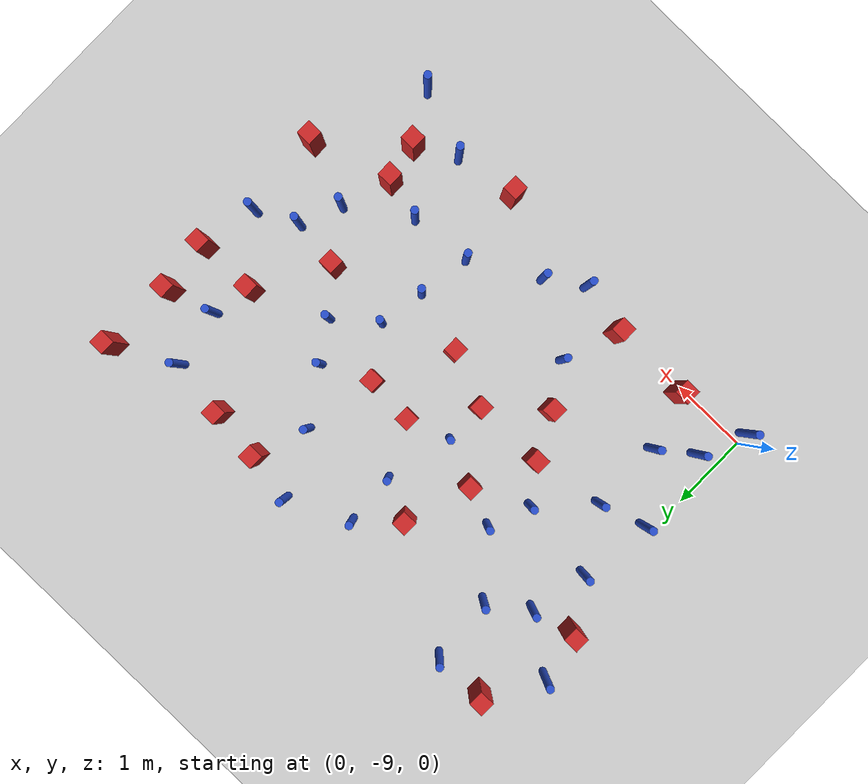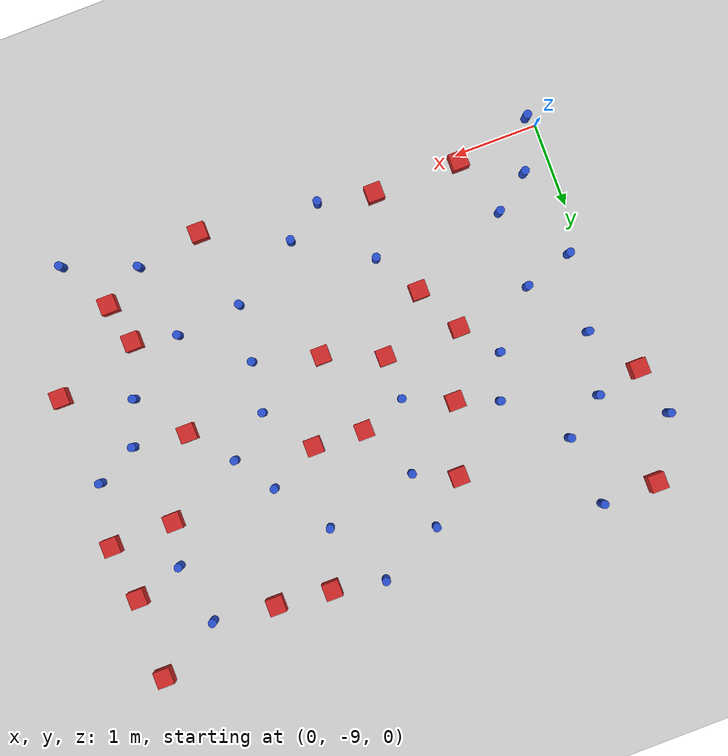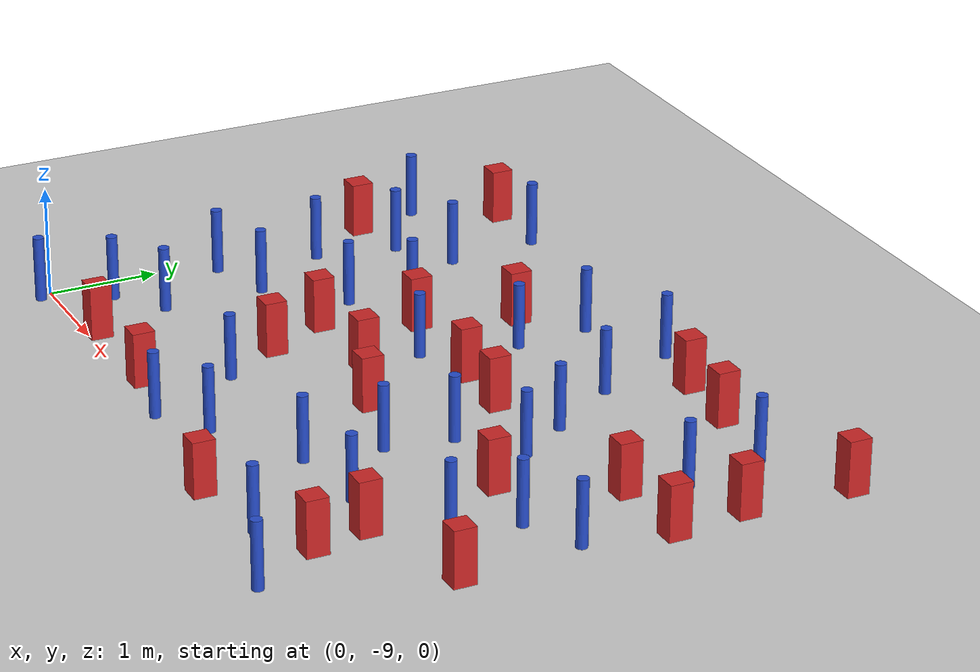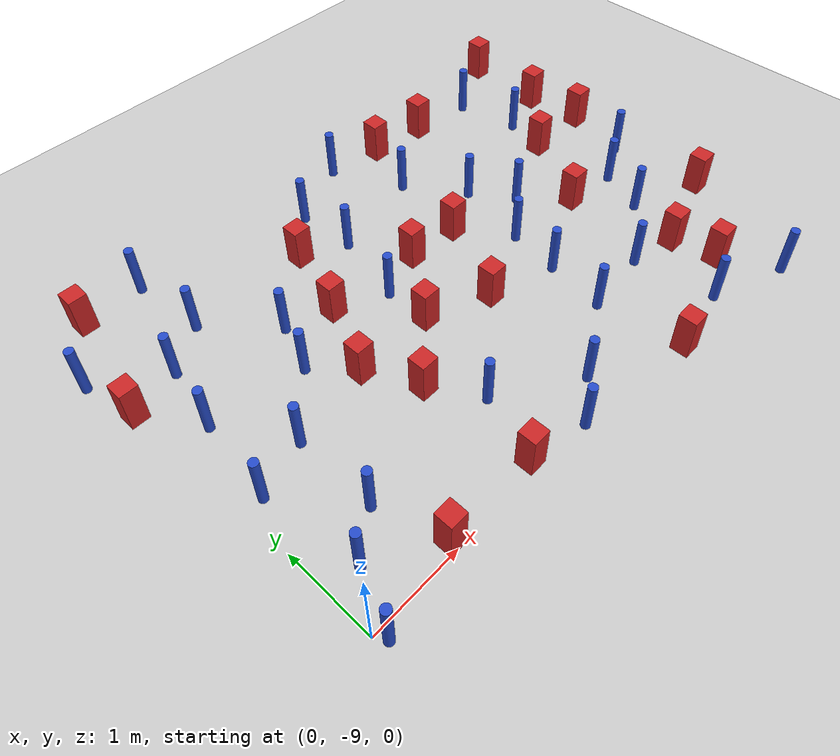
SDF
<sdf version="1.6">
 <world name="default">
  <model name="ground_plane">
   <static>1</static>
   <link name="link">
    <collision name="collision">
     <geometry><plane><normal>0 0 1</normal><size>100 100</size></plane></geometry>
     <surface><friction><ode><mu>100</mu><mu2>50</mu2></ode></friction></surface>
    </collision>
    <visual name="visual">
     <cast_shadows>0</cast_shadows>
     <geometry><plane><normal>0 0 1</normal><size>100 100</size></plane></geometry>
     <material>
      <ambient>1.0 1.0 1.0 1.0</ambient>
      <diffuse>0.8 0.8 0.8 1.0</diffuse>
      <specular>0.01 0.01 0.01 1.000000</specular>
     </material>
    </visual>
   </link>
  </model>
  <model name="pole_obstacle0">
   <static>true</static>
   <pose>4.34795692381 -6.1171369326 2.88873142074e-08 -9.90536690842e-09 4.60219948965e-07 -1.20965994976e-07</pose>
   <link name="link">
    <pose>0 0 0.3 0 -0 0</pose>
    <inertial>
     <mass>1</mass>
     <inertia><ixx>0.145833</ixx><ixy>0</ixy><ixz>0</ixz><iyy>0.145833</iyy><iyz>0</iyz><izz>0.125</izz></inertia>
    </inertial>
    <collision name="collision">
     <geometry><cylinder><radius>0.05</radius><length>.6</length></cylinder></geometry>
    </collision>
    <visual name="visual">
     <geometry><cylinder><radius>0.05</radius><length>.6</length></cylinder></geometry>
     <material>
      <script><name>Gazebo/Blue</name><uri>file://media/materials/scripts/gazebo.material</uri></script>
     </material>
    </visual>
   </link>
  </model>
  <model name="pole_obstacle2">
   <static>true</static>
   <pose>0.933791437993 -5.44674622654 2.88873142074e-08 -9.90536689661e-09 4.60219948993e-07 -1.20965994957e-07</pose>
   <link name="link">
    <pose>0 0 0.3 0 -0 0</pose>
    <inertial>
     <mass>1</mass>
     <inertia><ixx>0.145833</ixx><ixy>0</ixy><ixz>0</ixz><iyy>0.145833</iyy><iyz>0</iyz><izz>0.125</izz></inertia>
    </inertial>
    <collision name="collision">
     <geometry><cylinder><radius>0.05</radius><length>.6</length></cylinder></geometry>
    </collision>
    <visual name="visual">
     <geometry><cylinder><radius>0.05</radius><length>.6</length></cylinder></geometry>
     <material>
      <script><name>Gazebo/Blue</name><uri>file://media/materials/scripts/gazebo.material</uri></script>
     </material>
    </visual>
   </link>
  </model>
  <model name="square_post_obstacle9">
   <static>true</static>
   <pose>0.173088994099 -4.60743479318 8.22691968438e-08 7.2212513382e-06 -7.54495500217e-07 2.29674213826e-05</pose>
   <link name="link">
    <pose>0 0 0.25 0 -0 0</pose>
    <inertial>
     <mass>100</mass>
     <inertia>
      <ixx>0.166667</ixx>
      <ixy>0</ixy>
      <ixz>0</ixz>
      <iyy>0.166667</iyy>
      <iyz>0</iyz>
      <izz>0.166667</izz>
     </inertia>
    </inertial>
    <collision name="collision"><geometry><box><size>.2 .2 .5</size></box></geometry></collision>
    <visual name="visual">
     <geometry><box><size>.2 .2 .5</size></box></geometry>
     <material>
      <script><name>Gazebo/Red</name><uri>file://media/materials/scripts/gazebo.material</uri></script>
     </material>
    </visual>
   </link>
  </model>
  <model name="square_post_obstacle10">
   <static>true</static>
   <pose>5.58549876604 -6.17589599914 8.22691968438e-08 7.2212513382e-06 -7.54495500217e-07 2.29674213826e-05</pose>
   <link name="link">
    <pose>0 0 0.25 0 -0 0</pose>
    <inertial>
     <mass>100</mass>
     <inertia>
      <ixx>0.166667</ixx>
      <ixy>0</ixy>
      <ixz>0</ixz>
      <iyy>0.166667</iyy>
      <iyz>0</iyz>
      <izz>0.166667</izz>
     </inertia>
    </inertial>
    <collision name="collision"><geometry><box><size>.2 .2 .5</size></box></geometry></collision>
    <visual name="visual">
     <geometry><box><size>.2 .2 .5</size></box></geometry>
     <material>
      <script><name>Gazebo/Red</name><uri>file://media/materials/scripts/gazebo.material</uri></script>
     </material>
    </visual>
   </link>
  </model>
  <model name="square_post_obstacle11">
   <static>true</static>
   <pose>0.999707619295 -8.90997136029 8.22691968438e-08 7.2212513382e-06 -7.54495500217e-07 2.29674213826e-05</pose>
   <link name="link">
    <pose>0 0 0.25 0 -0 0</pose>
    <inertial>
     <mass>100</mass>
     <inertia>
      <ixx>0.166667</ixx>
      <ixy>0</ixy>
      <ixz>0</ixz>
      <iyy>0.166667</iyy>
      <iyz>0</iyz>
      <izz>0.166667</izz>
     </inertia>
    </inertial>
    <collision name="collision"><geometry><box><size>.2 .2 .5</size></box></geometry></collision>
    <visual name="visual">
     <geometry><box><size>.2 .2 .5</size></box></geometry>
     <material>
      <script><name>Gazebo/Red</name><uri>file://media/materials/scripts/gazebo.material</uri></script>
     </material>
    </visual>
   </link>
  </model>
  <model name="square_post_obstacle25">
   <static>true</static>
   <pose>2.04702596472 -8.91406215674 8.22691968438e-08 7.22125133819e-06 -7.54495500217e-07 2.29674213826e-05</pose>
   <link name="link">
    <pose>0 0 0.25 0 -0 0</pose>
    <inertial>
     <mass>100</mass>
     <inertia>
      <ixx>0.166667</ixx>
      <ixy>0</ixy>
      <ixz>0</ixz>
      <iyy>0.166667</iyy>
      <iyz>0</iyz>
      <izz>0.166667</izz>
     </inertia>
    </inertial>
    <collision name="collision"><geometry><box><size>.2 .2 .5</size></box></geometry></collision>
    <visual name="visual">
     <geometry><box><size>.2 .2 .5</size></box></geometry>
     <material>
      <script><name>Gazebo/Red</name><uri>file://media/materials/scripts/gazebo.material</uri></script>
     </material>
    </visual>
   </link>
  </model>
  <model name="pole_obstacle24">
   <static>true</static>
   <pose>4.90524724189 -9.08340190689 2.88873142074e-08 -9.9053668967e-09 4.60219948993e-07 -1.20965994957e-07</pose>
   <link name="link">
    <pose>0 0 0.3 0 -0 0</pose>
    <inertial>
     <mass>1</mass>
     <inertia><ixx>0.145833</ixx><ixy>0</ixy><ixz>0</ixz><iyy>0.145833</iyy><iyz>0</iyz><izz>0.125</izz></inertia>
    </inertial>
    <collision name="collision">
     <geometry><cylinder><radius>0.05</radius><length>.6</length></cylinder></geometry>
    </collision>
    <visual name="visual">
     <geometry><cylinder><radius>0.05</radius><length>.6</length></cylinder></geometry>
     <material>
      <script><name>Gazebo/Blue</name><uri>file://media/materials/scripts/gazebo.material</uri></script>
     </material>
    </visual>
   </link>
  </model>
  <model name="pole_obstacle34">
   <static>true</static>
   <pose>0.76741504973 -7.26752866724 2.88873142074e-08 -9.90536689661e-09 4.60219948993e-07 -1.20965994957e-07</pose>
   <link name="link">
    <pose>0 0 0.3 0 -0 0</pose>
    <inertial>
     <mass>1</mass>
     <inertia><ixx>0.145833</ixx><ixy>0</ixy><ixz>0</ixz><iyy>0.145833</iyy><iyz>0</iyz><izz>0.125</izz></inertia>
    </inertial>
    <collision name="collision">
     <geometry><cylinder><radius>0.05</radius><length>.6</length></cylinder></geometry>
    </collision>
    <visual name="visual">
     <geometry><cylinder><radius>0.05</radius><length>.6</length></cylinder></geometry>
     <material>
      <script><name>Gazebo/Blue</name><uri>file://media/materials/scripts/gazebo.material</uri></script>
     </material>
    </visual>
   </link>
  </model>
  <model name="pole_obstacle40">
   <static>true</static>
   <pose>2.74998378904 -5.03391932388 2.88873142074e-08 -9.90536689859e-09 4.60219948989e-07 -1.20965994961e-07</pose>
   <link name="link">
    <pose>0 0 0.3 0 -0 0</pose>
    <inertial>
     <mass>1</mass>
     <inertia><ixx>0.145833</ixx><ixy>0</ixy><ixz>0</ixz><iyy>0.145833</iyy><iyz>0</iyz><izz>0.125</izz></inertia>
    </inertial>
    <collision name="collision">
     <geometry><cylinder><radius>0.05</radius><length>.6</length></cylinder></geometry>
    </collision>
    <visual name="visual">
     <geometry><cylinder><radius>0.05</radius><length>.6</length></cylinder></geometry>
     <material>
      <script><name>Gazebo/Blue</name><uri>file://media/materials/scripts/gazebo.material</uri></script>
     </material>
    </visual>
   </link>
  </model>
  <model name="square_post_obstacle42">
   <static>true</static>
   <pose>6.30065635192 -7.9829899315 8.22691968438e-08 7.2212513382e-06 -7.54495500217e-07 2.29674213826e-05</pose>
   <link name="link">
    <pose>0 0 0.25 0 -0 0</pose>
    <inertial>
     <mass>100</mass>
     <inertia>
      <ixx>0.166667</ixx>
      <ixy>0</ixy>
      <ixz>0</ixz>
      <iyy>0.166667</iyy>
      <iyz>0</iyz>
      <izz>0.166667</izz>
     </inertia>
    </inertial>
    <collision name="collision"><geometry><box><size>.2 .2 .5</size></box></geometry></collision>
    <visual name="visual">
     <geometry><box><size>.2 .2 .5</size></box></geometry>
     <material>
      <script><name>Gazebo/Red</name><uri>file://media/materials/scripts/gazebo.material</uri></script>
     </material>
    </visual>
   </link>
  </model>
  <model name="pole_obstacle50">
   <static>true</static>
   <pose>0.183179159896 -7.45329864848 2.88873142074e-08 -9.90536689711e-09 4.60219948992e-07 -1.2096599496e-07</pose>
   <link name="link">
    <pose>0 0 0.3 0 -0 0</pose>
    <inertial>
     <mass>1</mass>
     <inertia><ixx>0.145833</ixx><ixy>0</ixy><ixz>0</ixz><iyy>0.145833</iyy><iyz>0</iyz><izz>0.125</izz></inertia>
    </inertial>
    <collision name="collision">
     <geometry><cylinder><radius>0.05</radius><length>.6</length></cylinder></geometry>
    </collision>
    <visual name="visual">
     <geometry><cylinder><radius>0.05</radius><length>.6</length></cylinder></geometry>
     <material>
      <script><name>Gazebo/Blue</name><uri>file://media/materials/scripts/gazebo.material</uri></script>
     </material>
    </visual>
   </link>
  </model>
  <model name="square_post_obstacle52">
   <static>true</static>
   <pose>3.29289854739 -7.36925721144 8.22691968438e-08 7.2212513382e-06 -7.54495500217e-07 2.29674213826e-05</pose>
   <link name="link">
    <pose>0 0 0.25 0 -0 0</pose>
    <inertial>
     <mass>100</mass>
     <inertia>
      <ixx>0.166667</ixx>
      <ixy>0</ixy>
      <ixz>0</ixz>
      <iyy>0.166667</iyy>
      <iyz>0</iyz>
      <izz>0.166667</izz>
     </inertia>
    </inertial>
    <collision name="collision"><geometry><box><size>.2 .2 .5</size></box></geometry></collision>
    <visual name="visual">
     <geometry><box><size>.2 .2 .5</size></box></geometry>
     <material>
      <script><name>Gazebo/Red</name><uri>file://media/materials/scripts/gazebo.material</uri></script>
     </material>
    </visual>
   </link>
  </model>
  <model name="square_post_obstacle60">
   <static>true</static>
   <pose>4.11973638282 -9.21090530438 8.22691968438e-08 7.22125133819e-06 -7.54495500217e-07 2.29674213826e-05</pose>
   <link name="link">
    <pose>0 0 0.25 0 -0 0</pose>
    <inertial>
     <mass>100</mass>
     <inertia>
      <ixx>0.166667</ixx>
      <ixy>0</ixy>
      <ixz>0</ixz>
      <iyy>0.166667</iyy>
      <iyz>0</iyz>
      <izz>0.166667</izz>
     </inertia>
    </inertial>
    <collision name="collision"><geometry><box><size>.2 .2 .5</size></box></geometry></collision>
    <visual name="visual">
     <geometry><box><size>.2 .2 .5</size></box></geometry>
     <material>
      <script><name>Gazebo/Red</name><uri>file://media/materials/scripts/gazebo.material</uri></script>
     </material>
    </visual>
   </link>
  </model>
  <model name="pole_obstacle60">
   <static>true</static>
   <pose>5.712511074 -7.15161358861 2.88873142074e-08 -9.90536690842e-09 4.60219948965e-07 -1.20965994976e-07</pose>
   <link name="link">
    <pose>0 0 0.3 0 -0 0</pose>
    <inertial>
     <mass>1</mass>
     <inertia><ixx>0.145833</ixx><ixy>0</ixy><ixz>0</ixz><iyy>0.145833</iyy><iyz>0</iyz><izz>0.125</izz></inertia>
    </inertial>
    <collision name="collision">
     <geometry><cylinder><radius>0.05</radius><length>.6</length></cylinder></geometry>
    </collision>
    <visual name="visual">
     <geometry><cylinder><radius>0.05</radius><length>.6</length></cylinder></geometry>
     <material>
      <script><name>Gazebo/Blue</name><uri>file://media/materials/scripts/gazebo.material</uri></script>
     </material>
    </visual>
   </link>
  </model>
  <model name="pole_obstacle64">
   <static>true</static>
   <pose>0.299073010868 -6.52585429868 2.88873142074e-08 -9.90536689592e-09 4.60219948995e-07 -1.20965994956e-07</pose>
   <link name="link">
    <pose>0 0 0.3 0 -0 0</pose>
    <inertial>
     <mass>1</mass>
     <inertia><ixx>0.145833</ixx><ixy>0</ixy><ixz>0</ixz><iyy>0.145833</iyy><iyz>0</iyz><izz>0.125</izz></inertia>
    </inertial>
    <collision name="collision">
     <geometry><cylinder><radius>0.05</radius><length>.6</length></cylinder></geometry>
    </collision>
    <visual name="visual">
     <geometry><cylinder><radius>0.05</radius><length>.6</length></cylinder></geometry>
     <material>
      <script><name>Gazebo/Blue</name><uri>file://media/materials/scripts/gazebo.material</uri></script>
     </material>
    </visual>
   </link>
  </model>
  <model name="pole_obstacle66">
   <static>true</static>
   <pose>2.59768235625 -6.5658563963 2.88873142074e-08 -9.90536689859e-09 4.60219948989e-07 -1.20965994961e-07</pose>
   <link name="link">
    <pose>0 0 0.3 0 -0 0</pose>
    <inertial>
     <mass>1</mass>
     <inertia><ixx>0.145833</ixx><ixy>0</ixy><ixz>0</ixz><iyy>0.145833</iyy><iyz>0</iyz><izz>0.125</izz></inertia>
    </inertial>
    <collision name="collision">
     <geometry><cylinder><radius>0.05</radius><length>.6</length></cylinder></geometry>
    </collision>
    <visual name="visual">
     <geometry><cylinder><radius>0.05</radius><length>.6</length></cylinder></geometry>
     <material>
      <script><name>Gazebo/Blue</name><uri>file://media/materials/scripts/gazebo.material</uri></script>
     </material>
    </visual>
   </link>
  </model>
  <model name="square_post_obstacle69">
   <static>true</static>
   <pose>5.06610992522 -7.08049901189 8.22691968438e-08 7.2212513382e-06 -7.54495500217e-07 2.29674213826e-05</pose>
   <link name="link">
    <pose>0 0 0.25 0 -0 0</pose>
    <inertial>
     <mass>100</mass>
     <inertia>
      <ixx>0.166667</ixx>
      <ixy>0</ixy>
      <ixz>0</ixz>
      <iyy>0.166667</iyy>
      <iyz>0</iyz>
      <izz>0.166667</izz>
     </inertia>
    </inertial>
    <collision name="collision"><geometry><box><size>.2 .2 .5</size></box></geometry></collision>
    <visual name="visual">
     <geometry><box><size>.2 .2 .5</size></box></geometry>
     <material>
      <script><name>Gazebo/Red</name><uri>file://media/materials/scripts/gazebo.material</uri></script>
     </material>
    </visual>
   </link>
  </model>
  <model name="square_post_obstacle75">
   <static>true</static>
   <pose>6.36178501607 -6.16197255848 8.22691968438e-08 7.2212513382e-06 -7.54495500217e-07 2.29674213826e-05</pose>
   <link name="link">
    <pose>0 0 0.25 0 -0 0</pose>
    <inertial>
     <mass>100</mass>
     <inertia>
      <ixx>0.166667</ixx>
      <ixy>0</ixy>
      <ixz>0</ixz>
      <iyy>0.166667</iyy>
      <iyz>0</iyz>
      <izz>0.166667</izz>
     </inertia>
    </inertial>
    <collision name="collision"><geometry><box><size>.2 .2 .5</size></box></geometry></collision>
    <visual name="visual">
     <geometry><box><size>.2 .2 .5</size></box></geometry>
     <material>
      <script><name>Gazebo/Red</name><uri>file://media/materials/scripts/gazebo.material</uri></script>
     </material>
    </visual>
   </link>
  </model>
  <model name="pole_obstacle70">
   <static>true</static>
   <pose>4.66189087925 -6.58726298082 2.88873142074e-08 -9.90536690842e-09 4.60219948965e-07 -1.20965994976e-07</pose>
   <link name="link">
    <pose>0 0 0.3 0 -0 0</pose>
    <inertial>
     <mass>1</mass>
     <inertia><ixx>0.145833</ixx><ixy>0</ixy><ixz>0</ixz><iyy>0.145833</iyy><iyz>0</iyz><izz>0.125</izz></inertia>
    </inertial>
    <collision name="collision">
     <geometry><cylinder><radius>0.05</radius><length>.6</length></cylinder></geometry>
    </collision>
    <visual name="visual">
     <geometry><cylinder><radius>0.05</radius><length>.6</length></cylinder></geometry>
     <material>
      <script><name>Gazebo/Blue</name><uri>file://media/materials/scripts/gazebo.material</uri></script>
     </material>
    </visual>
   </link>
  </model>
  <model name="square_post_obstacle77">
   <static>true</static>
   <pose>1.68451861194 -7.10127187603 8.22691968438e-08 7.2212513382e-06 -7.54495500217e-07 2.29674213826e-05</pose>
   <link name="link">
    <pose>0 0 0.25 0 -0 0</pose>
    <inertial>
     <mass>100</mass>
     <inertia>
      <ixx>0.166667</ixx>
      <ixy>0</ixy>
      <ixz>0</ixz>
      <iyy>0.166667</iyy>
      <iyz>0</iyz>
      <izz>0.166667</izz>
     </inertia>
    </inertial>
    <collision name="collision"><geometry><box><size>.2 .2 .5</size></box></geometry></collision>
    <visual name="visual">
     <geometry><box><size>.2 .2 .5</size></box></geometry>
     <material>
      <script><name>Gazebo/Red</name><uri>file://media/materials/scripts/gazebo.material</uri></script>
     </material>
    </visual>
   </link>
  </model>
  <model name="pole_obstacle93">
   <static>true</static>
   <pose>1.33780648672 -6.66549568075 2.88873142074e-08 -9.90536689852e-09 4.60219948989e-07 -1.2096599496e-07</pose>
   <link name="link">
    <pose>0 0 0.3 0 -0 0</pose>
    <inertial>
     <mass>1</mass>
     <inertia><ixx>0.145833</ixx><ixy>0</ixy><ixz>0</ixz><iyy>0.145833</iyy><iyz>0</iyz><izz>0.125</izz></inertia>
    </inertial>
    <collision name="collision">
     <geometry><cylinder><radius>0.05</radius><length>.6</length></cylinder></geometry>
    </collision>
    <visual name="visual">
     <geometry><cylinder><radius>0.05</radius><length>.6</length></cylinder></geometry>
     <material>
      <script><name>Gazebo/Blue</name><uri>file://media/materials/scripts/gazebo.material</uri></script>
     </material>
    </visual>
   </link>
  </model>
  <model name="square_post_obstacle87">
   <static>true</static>
   <pose>4.14097035179 -4.78002807105 8.22691968438e-08 7.2212513382e-06 -7.54495500217e-07 2.29674213826e-05</pose>
   <link name="link">
    <pose>0 0 0.25 0 -0 0</pose>
    <inertial>
     <mass>100</mass>
     <inertia>
      <ixx>0.166667</ixx>
      <ixy>0</ixy>
      <ixz>0</ixz>
      <iyy>0.166667</iyy>
      <iyz>0</iyz>
      <izz>0.166667</izz>
     </inertia>
    </inertial>
    <collision name="collision"><geometry><box><size>.2 .2 .5</size></box></geometry></collision>
    <visual name="visual">
     <geometry><box><size>.2 .2 .5</size></box></geometry>
     <material>
      <script><name>Gazebo/Red</name><uri>file://media/materials/scripts/gazebo.material</uri></script>
     </material>
    </visual>
   </link>
  </model>
  <model name="square_post_obstacle88">
   <static>true</static>
   <pose>1.96690892142 -7.67044473809 8.22691968438e-08 7.2212513382e-06 -7.54495500217e-07 2.29674213826e-05</pose>
   <link name="link">
    <pose>0 0 0.25 0 -0 0</pose>
    <inertial>
     <mass>100</mass>
     <inertia>
      <ixx>0.166667</ixx>
      <ixy>0</ixy>
      <ixz>0</ixz>
      <iyy>0.166667</iyy>
      <iyz>0</iyz>
      <izz>0.166667</izz>
     </inertia>
    </inertial>
    <collision name="collision"><geometry><box><size>.2 .2 .5</size></box></geometry></collision>
    <visual name="visual">
     <geometry><box><size>.2 .2 .5</size></box></geometry>
     <material>
      <script><name>Gazebo/Red</name><uri>file://media/materials/scripts/gazebo.material</uri></script>
     </material>
    </visual>
   </link>
  </model>
  <model name="square_post_obstacle97">
   <static>true</static>
   <pose>6.28838680211 -5.49033265391 8.22691968438e-08 7.22125133819e-06 -7.54495500217e-07 2.29674213826e-05</pose>
   <link name="link">
    <pose>0 0 0.25 0 -0 0</pose>
    <inertial>
     <mass>100</mass>
     <inertia>
      <ixx>0.166667</ixx>
      <ixy>0</ixy>
      <ixz>0</ixz>
      <iyy>0.166667</iyy>
      <iyz>0</iyz>
      <izz>0.166667</izz>
     </inertia>
    </inertial>
    <collision name="collision"><geometry><box><size>.2 .2 .5</size></box></geometry></collision>
    <visual name="visual">
     <geometry><box><size>.2 .2 .5</size></box></geometry>
     <material>
      <script><name>Gazebo/Red</name><uri>file://media/materials/scripts/gazebo.material</uri></script>
     </material>
    </visual>
   </link>
  </model>
  <model name="pole_obstacle111">
   <static>true</static>
   <pose>5.56269111911 -4.92743941206 2.88873142074e-08 -9.90536690842e-09 4.60219948965e-07 -1.20965994976e-07</pose>
   <link name="link">
    <pose>0 0 0.3 0 -0 0</pose>
    <inertial>
     <mass>1</mass>
     <inertia><ixx>0.145833</ixx><ixy>0</ixy><ixz>0</ixz><iyy>0.145833</iyy><iyz>0</iyz><izz>0.125</izz></inertia>
    </inertial>
    <collision name="collision">
     <geometry><cylinder><radius>0.05</radius><length>.6</length></cylinder></geometry>
    </collision>
    <visual name="visual">
     <geometry><cylinder><radius>0.05</radius><length>.6</length></cylinder></geometry>
     <material>
      <script><name>Gazebo/Blue</name><uri>file://media/materials/scripts/gazebo.material</uri></script>
     </material>
    </visual>
   </link>
  </model>
  <model name="pole_obstacle112">
   <static>true</static>
   <pose>0.848625041701 -4.59470414238 2.88873142074e-08 -9.90536689661e-09 4.60219948993e-07 -1.20965994957e-07</pose>
   <link name="link">
    <pose>0 0 0.3 0 -0 0</pose>
    <inertial>
     <mass>1</mass>
     <inertia><ixx>0.145833</ixx><ixy>0</ixy><ixz>0</ixz><iyy>0.145833</iyy><iyz>0</iyz><izz>0.125</izz></inertia>
    </inertial>
    <collision name="collision">
     <geometry><cylinder><radius>0.05</radius><length>.6</length></cylinder></geometry>
    </collision>
    <visual name="visual">
     <geometry><cylinder><radius>0.05</radius><length>.6</length></cylinder></geometry>
     <material>
      <script><name>Gazebo/Blue</name><uri>file://media/materials/scripts/gazebo.material</uri></script>
     </material>
    </visual>
   </link>
  </model>
  <model name="pole_obstacle120">
   <static>true</static>
   <pose>4.16606870584 -6.99106058908 2.88873142074e-08 -9.90536690842e-09 4.60219948965e-07 -1.20965994976e-07</pose>
   <link name="link">
    <pose>0 0 0.3 0 -0 0</pose>
    <inertial>
     <mass>1</mass>
     <inertia><ixx>0.145833</ixx><ixy>0</ixy><ixz>0</ixz><iyy>0.145833</iyy><iyz>0</iyz><izz>0.125</izz></inertia>
    </inertial>
    <collision name="collision">
     <geometry><cylinder><radius>0.05</radius><length>.6</length></cylinder></geometry>
    </collision>
    <visual name="visual">
     <geometry><cylinder><radius>0.05</radius><length>.6</length></cylinder></geometry>
     <material>
      <script><name>Gazebo/Blue</name><uri>file://media/materials/scripts/gazebo.material</uri></script>
     </material>
    </visual>
   </link>
  </model>
  <model name="pole_obstacle122">
   <static>true</static>
   <pose>4.76310109081 -8.18098589878 2.88873142074e-08 -9.9053668967e-09 4.60219948993e-07 -1.20965994957e-07</pose>
   <link name="link">
    <pose>0 0 0.3 0 -0 0</pose>
    <inertial>
     <mass>1</mass>
     <inertia><ixx>0.145833</ixx><ixy>0</ixy><ixz>0</ixz><iyy>0.145833</iyy><iyz>0</iyz><izz>0.125</izz></inertia>
    </inertial>
    <collision name="collision">
     <geometry><cylinder><radius>0.05</radius><length>.6</length></cylinder></geometry>
    </collision>
    <visual name="visual">
     <geometry><cylinder><radius>0.05</radius><length>.6</length></cylinder></geometry>
     <material>
      <script><name>Gazebo/Blue</name><uri>file://media/materials/scripts/gazebo.material</uri></script>
     </material>
    </visual>
   </link>
  </model>
  <model name="pole_obstacle123">
   <static>true</static>
   <pose>3.90771319222 -5.45920886995 2.88873142074e-08 -9.90536689859e-09 4.60219948989e-07 -1.20965994961e-07</pose>
   <link name="link">
    <pose>0 0 0.3 0 -0 0</pose>
    <inertial>
     <mass>1</mass>
     <inertia><ixx>0.145833</ixx><ixy>0</ixy><ixz>0</ixz><iyy>0.145833</iyy><iyz>0</iyz><izz>0.125</izz></inertia>
    </inertial>
    <collision name="collision">
     <geometry><cylinder><radius>0.05</radius><length>.6</length></cylinder></geometry>
    </collision>
    <visual name="visual">
     <geometry><cylinder><radius>0.05</radius><length>.6</length></cylinder></geometry>
     <material>
      <script><name>Gazebo/Blue</name><uri>file://media/materials/scripts/gazebo.material</uri></script>
     </material>
    </visual>
   </link>
  </model>
  <model name="pole_obstacle124">
   <static>true</static>
   <pose>5.50485974218 -7.67206686799 2.88873142074e-08 -9.90536690842e-09 4.60219948965e-07 -1.20965994976e-07</pose>
   <link name="link">
    <pose>0 0 0.3 0 -0 0</pose>
    <inertial>
     <mass>1</mass>
     <inertia><ixx>0.145833</ixx><ixy>0</ixy><ixz>0</ixz><iyy>0.145833</iyy><iyz>0</iyz><izz>0.125</izz></inertia>
    </inertial>
    <collision name="collision">
     <geometry><cylinder><radius>0.05</radius><length>.6</length></cylinder></geometry>
    </collision>
    <visual name="visual">
     <geometry><cylinder><radius>0.05</radius><length>.6</length></cylinder></geometry>
     <material>
      <script><name>Gazebo/Blue</name><uri>file://media/materials/scripts/gazebo.material</uri></script>
     </material>
    </visual>
   </link>
  </model>
  <model name="pole_obstacle136">
   <static>true</static>
   <pose>3.51663074135 -4.66098360127 2.88873142074e-08 -9.90536689859e-09 4.60219948989e-07 -1.20965994961e-07</pose>
   <link name="link">
    <pose>0 0 0.3 0 -0 0</pose>
    <inertial>
     <mass>1</mass>
     <inertia><ixx>0.145833</ixx><ixy>0</ixy><ixz>0</ixz><iyy>0.145833</iyy><iyz>0</iyz><izz>0.125</izz></inertia>
    </inertial>
    <collision name="collision">
     <geometry><cylinder><radius>0.05</radius><length>.6</length></cylinder></geometry>
    </collision>
    <visual name="visual">
     <geometry><cylinder><radius>0.05</radius><length>.6</length></cylinder></geometry>
     <material>
      <script><name>Gazebo/Blue</name><uri>file://media/materials/scripts/gazebo.material</uri></script>
     </material>
    </visual>
   </link>
  </model>
  <model name="square_post_obstacle121">
   <static>true</static>
   <pose>2.30005602979 -5.48568142289 8.22691968438e-08 7.2212513382e-06 -7.54495500217e-07 2.29674213826e-05</pose>
   <link name="link">
    <pose>0 0 0.25 0 -0 0</pose>
    <inertial>
     <mass>100</mass>
     <inertia>
      <ixx>0.166667</ixx>
      <ixy>0</ixy>
      <ixz>0</ixz>
      <iyy>0.166667</iyy>
      <iyz>0</iyz>
      <izz>0.166667</izz>
     </inertia>
    </inertial>
    <collision name="collision"><geometry><box><size>.2 .2 .5</size></box></geometry></collision>
    <visual name="visual">
     <geometry><box><size>.2 .2 .5</size></box></geometry>
     <material>
      <script><name>Gazebo/Red</name><uri>file://media/materials/scripts/gazebo.material</uri></script>
     </material>
    </visual>
   </link>
  </model>
  <model name="square_post_obstacle126">
   <static>true</static>
   <pose>3.74826098522 -6.41418640834 8.22691968438e-08 7.2212513382e-06 -7.54495500217e-07 2.29674213826e-05</pose>
   <link name="link">
    <pose>0 0 0.25 0 -0 0</pose>
    <inertial>
     <mass>100</mass>
     <inertia>
      <ixx>0.166667</ixx>
      <ixy>0</ixy>
      <ixz>0</ixz>
      <iyy>0.166667</iyy>
      <iyz>0</iyz>
      <izz>0.166667</izz>
     </inertia>
    </inertial>
    <collision name="collision"><geometry><box><size>.2 .2 .5</size></box></geometry></collision>
    <visual name="visual">
     <geometry><box><size>.2 .2 .5</size></box></geometry>
     <material>
      <script><name>Gazebo/Red</name><uri>file://media/materials/scripts/gazebo.material</uri></script>
     </material>
    </visual>
   </link>
  </model>
  <model name="square_post_obstacle127">
   <static>true</static>
   <pose>6.32455305377 -4.52651272758 8.22691968438e-08 7.2212513382e-06 -7.54495500217e-07 2.29674213826e-05</pose>
   <link name="link">
    <pose>0 0 0.25 0 -0 0</pose>
    <inertial>
     <mass>100</mass>
     <inertia>
      <ixx>0.166667</ixx>
      <ixy>0</ixy>
      <ixz>0</ixz>
      <iyy>0.166667</iyy>
      <iyz>0</iyz>
      <izz>0.166667</izz>
     </inertia>
    </inertial>
    <collision name="collision"><geometry><box><size>.2 .2 .5</size></box></geometry></collision>
    <visual name="visual">
     <geometry><box><size>.2 .2 .5</size></box></geometry>
     <material>
      <script><name>Gazebo/Red</name><uri>file://media/materials/scripts/gazebo.material</uri></script>
     </material>
    </visual>
   </link>
  </model>
  <model name="pole_obstacle152">
   <static>true</static>
   <pose>0.0803557579109 -9.11261331872 2.88873142074e-08 -9.90536691014e-09 4.60219948961e-07 -1.20965994979e-07</pose>
   <link name="link">
    <pose>0 0 0.3 0 -0 0</pose>
    <inertial>
     <mass>1</mass>
     <inertia><ixx>0.145833</ixx><ixy>0</ixy><ixz>0</ixz><iyy>0.145833</iyy><iyz>0</iyz><izz>0.125</izz></inertia>
    </inertial>
    <collision name="collision">
     <geometry><cylinder><radius>0.05</radius><length>.6</length></cylinder></geometry>
    </collision>
    <visual name="visual">
     <geometry><cylinder><radius>0.05</radius><length>.6</length></cylinder></geometry>
     <material>
      <script><name>Gazebo/Blue</name><uri>file://media/materials/scripts/gazebo.material</uri></script>
     </material>
    </visual>
   </link>
  </model>
  <model name="pole_obstacle158">
   <static>true</static>
   <pose>6.21602150678 -6.89563009958 2.88873142074e-08 -9.90536690842e-09 4.60219948965e-07 -1.20965994976e-07</pose>
   <link name="link">
    <pose>0 0 0.3 0 -0 0</pose>
    <inertial>
     <mass>1</mass>
     <inertia><ixx>0.145833</ixx><ixy>0</ixy><ixz>0</ixz><iyy>0.145833</iyy><iyz>0</iyz><izz>0.125</izz></inertia>
    </inertial>
    <collision name="collision">
     <geometry><cylinder><radius>0.05</radius><length>.6</length></cylinder></geometry>
    </collision>
    <visual name="visual">
     <geometry><cylinder><radius>0.05</radius><length>.6</length></cylinder></geometry>
     <material>
      <script><name>Gazebo/Blue</name><uri>file://media/materials/scripts/gazebo.material</uri></script>
     </material>
    </visual>
   </link>
  </model>
  <model name="pole_obstacle165">
   <static>true</static>
   <pose>1.53804931815 -6.13509695055 2.88873142074e-08 -9.90536689852e-09 4.60219948989e-07 -1.2096599496e-07</pose>
   <link name="link">
    <pose>0 0 0.3 0 -0 0</pose>
    <inertial>
     <mass>1</mass>
     <inertia><ixx>0.145833</ixx><ixy>0</ixy><ixz>0</ixz><iyy>0.145833</iyy><iyz>0</iyz><izz>0.125</izz></inertia>
    </inertial>
    <collision name="collision">
     <geometry><cylinder><radius>0.05</radius><length>.6</length></cylinder></geometry>
    </collision>
    <visual name="visual">
     <geometry><cylinder><radius>0.05</radius><length>.6</length></cylinder></geometry>
     <material>
      <script><name>Gazebo/Blue</name><uri>file://media/materials/scripts/gazebo.material</uri></script>
     </material>
    </visual>
   </link>
  </model>
  <model name="square_post_obstacle159">
   <static>true</static>
   <pose>-0.0993556895828 -5.91957730779 8.22691968438e-08 7.22125133819e-06 -7.54495500217e-07 2.29674213826e-05</pose>
   <link name="link">
    <pose>0 0 0.25 0 -0 0</pose>
    <inertial>
     <mass>100</mass>
     <inertia>
      <ixx>0.166667</ixx>
      <ixy>0</ixy>
      <ixz>0</ixz>
      <iyy>0.166667</iyy>
      <iyz>0</iyz>
      <izz>0.166667</izz>
     </inertia>
    </inertial>
    <collision name="collision"><geometry><box><size>.2 .2 .5</size></box></geometry></collision>
    <visual name="visual">
     <geometry><box><size>.2 .2 .5</size></box></geometry>
     <material>
      <script><name>Gazebo/Red</name><uri>file://media/materials/scripts/gazebo.material</uri></script>
     </material>
    </visual>
   </link>
  </model>
  <model name="pole_obstacle169">
   <static>true</static>
   <pose>0.446306533353 -5.792056684 2.88873142074e-08 -9.90536689683e-09 4.60219948993e-07 -1.20965994957e-07</pose>
   <link name="link">
    <pose>0 0 0.3 0 -0 0</pose>
    <inertial>
     <mass>1</mass>
     <inertia><ixx>0.145833</ixx><ixy>0</ixy><ixz>0</ixz><iyy>0.145833</iyy><iyz>0</iyz><izz>0.125</izz></inertia>
    </inertial>
    <collision name="collision">
     <geometry><cylinder><radius>0.05</radius><length>.6</length></cylinder></geometry>
    </collision>
    <visual name="visual">
     <geometry><cylinder><radius>0.05</radius><length>.6</length></cylinder></geometry>
     <material>
      <script><name>Gazebo/Blue</name><uri>file://media/materials/scripts/gazebo.material</uri></script>
     </material>
    </visual>
   </link>
  </model>
  <model name="pole_obstacle177">
   <static>true</static>
   <pose>5.70318219483 -5.66611902653 2.88873142074e-08 -9.90536690842e-09 4.60219948965e-07 -1.20965994976e-07</pose>
   <link name="link">
    <pose>0 0 0.3 0 -0 0</pose>
    <inertial>
     <mass>1</mass>
     <inertia><ixx>0.145833</ixx><ixy>0</ixy><ixz>0</ixz><iyy>0.145833</iyy><iyz>0</iyz><izz>0.125</izz></inertia>
    </inertial>
    <collision name="collision">
     <geometry><cylinder><radius>0.05</radius><length>.6</length></cylinder></geometry>
    </collision>
    <visual name="visual">
     <geometry><cylinder><radius>0.05</radius><length>.6</length></cylinder></geometry>
     <material>
      <script><name>Gazebo/Blue</name><uri>file://media/materials/scripts/gazebo.material</uri></script>
     </material>
    </visual>
   </link>
  </model>
  <model name="pole_obstacle182">
   <static>true</static>
   <pose>-0.244133351371 -5.30884649879 2.88873142074e-08 -9.90536689703e-09 4.60219948992e-07 -1.20965994959e-07</pose>
   <link name="link">
    <pose>0 0 0.3 0 -0 0</pose>
    <inertial>
     <mass>1</mass>
     <inertia><ixx>0.145833</ixx><ixy>0</ixy><ixz>0</ixz><iyy>0.145833</iyy><iyz>0</iyz><izz>0.125</izz></inertia>
    </inertial>
    <collision name="collision">
     <geometry><cylinder><radius>0.05</radius><length>.6</length></cylinder></geometry>
    </collision>
    <visual name="visual">
     <geometry><cylinder><radius>0.05</radius><length>.6</length></cylinder></geometry>
     <material>
      <script><name>Gazebo/Blue</name><uri>file://media/materials/scripts/gazebo.material</uri></script>
     </material>
    </visual>
   </link>
  </model>
  <model name="square_post_obstacle179">
   <static>true</static>
   <pose>2.59834661212 -7.09208531979 8.22691968438e-08 7.2212513382e-06 -7.54495500217e-07 2.29674213826e-05</pose>
   <link name="link">
    <pose>0 0 0.25 0 -0 0</pose>
    <inertial>
     <mass>100</mass>
     <inertia>
      <ixx>0.166667</ixx>
      <ixy>0</ixy>
      <ixz>0</ixz>
      <iyy>0.166667</iyy>
      <iyz>0</iyz>
      <izz>0.166667</izz>
     </inertia>
    </inertial>
    <collision name="collision"><geometry><box><size>.2 .2 .5</size></box></geometry></collision>
    <visual name="visual">
     <geometry><box><size>.2 .2 .5</size></box></geometry>
     <material>
      <script><name>Gazebo/Red</name><uri>file://media/materials/scripts/gazebo.material</uri></script>
     </material>
    </visual>
   </link>
  </model>
  <model name="square_post_obstacle184">
   <static>true</static>
   <pose>5.39540597828 -8.79477164152 8.22691968438e-08 7.22125133819e-06 -7.54495500217e-07 2.29674213826e-05</pose>
   <link name="link">
    <pose>0 0 0.25 0 -0 0</pose>
    <inertial>
     <mass>100</mass>
     <inertia>
      <ixx>0.166667</ixx>
      <ixy>0</ixy>
      <ixz>0</ixz>
      <iyy>0.166667</iyy>
      <iyz>0</iyz>
      <izz>0.166667</izz>
     </inertia>
    </inertial>
    <collision name="collision"><geometry><box><size>.2 .2 .5</size></box></geometry></collision>
    <visual name="visual">
     <geometry><box><size>.2 .2 .5</size></box></geometry>
     <material>
      <script><name>Gazebo/Red</name><uri>file://media/materials/scripts/gazebo.material</uri></script>
     </material>
    </visual>
   </link>
  </model>
  <model name="square_post_obstacle188">
   <static>true</static>
   <pose>3.1358339805 -6.37999164698 8.22691968438e-08 7.22125133819e-06 -7.54495500217e-07 2.29674213826e-05</pose>
   <link name="link">
    <pose>0 0 0.25 0 -0 0</pose>
    <inertial>
     <mass>100</mass>
     <inertia>
      <ixx>0.166667</ixx>
      <ixy>0</ixy>
      <ixz>0</ixz>
      <iyy>0.166667</iyy>
      <iyz>0</iyz>
      <izz>0.166667</izz>
     </inertia>
    </inertial>
    <collision name="collision"><geometry><box><size>.2 .2 .5</size></box></geometry></collision>
    <visual name="visual">
     <geometry><box><size>.2 .2 .5</size></box></geometry>
     <material>
      <script><name>Gazebo/Red</name><uri>file://media/materials/scripts/gazebo.material</uri></script>
     </material>
    </visual>
   </link>
  </model>
  <model name="square_post_obstacle189">
   <static>true</static>
   <pose>5.28754852387 -8.29999265783 8.22691968438e-08 7.2212513382e-06 -7.54495500217e-07 2.29674213826e-05</pose>
   <link name="link">
    <pose>0 0 0.25 0 -0 0</pose>
    <inertial>
     <mass>100</mass>
     <inertia>
      <ixx>0.166667</ixx>
      <ixy>0</ixy>
      <ixz>0</ixz>
      <iyy>0.166667</iyy>
      <iyz>0</iyz>
      <izz>0.166667</izz>
     </inertia>
    </inertial>
    <collision name="collision"><geometry><box><size>.2 .2 .5</size></box></geometry></collision>
    <visual name="visual">
     <geometry><box><size>.2 .2 .5</size></box></geometry>
     <material>
      <script><name>Gazebo/Red</name><uri>file://media/materials/scripts/gazebo.material</uri></script>
     </material>
    </visual>
   </link>
  </model>
  <model name="square_post_obstacle193">
   <static>true</static>
   <pose>4.81252501734 -4.84543066874 8.22691968438e-08 7.2212513382e-06 -7.54495500217e-07 2.29674213826e-05</pose>
   <link name="link">
    <pose>0 0 0.25 0 -0 0</pose>
    <inertial>
     <mass>100</mass>
     <inertia>
      <ixx>0.166667</ixx>
      <ixy>0</ixy>
      <ixz>0</ixz>
      <iyy>0.166667</iyy>
      <iyz>0</iyz>
      <izz>0.166667</izz>
     </inertia>
    </inertial>
    <collision name="collision"><geometry><box><size>.2 .2 .5</size></box></geometry></collision>
    <visual name="visual">
     <geometry><box><size>.2 .2 .5</size></box></geometry>
     <material>
      <script><name>Gazebo/Red</name><uri>file://media/materials/scripts/gazebo.material</uri></script>
     </material>
    </visual>
   </link>
  </model>
  <model name="pole_obstacle190">
   <static>true</static>
   <pose>3.97217908591 -8.25782404459 2.88873142074e-08 -9.90536692324e-09 4.6021994893e-07 -1.20965994987e-07</pose>
   <link name="link">
    <pose>0 0 0.3 0 -0 0</pose>
    <inertial>
     <mass>1</mass>
     <inertia><ixx>0.145833</ixx><ixy>0</ixy><ixz>0</ixz><iyy>0.145833</iyy><iyz>0</iyz><izz>0.125</izz></inertia>
    </inertial>
    <collision name="collision">
     <geometry><cylinder><radius>0.05</radius><length>.6</length></cylinder></geometry>
    </collision>
    <visual name="visual">
     <geometry><cylinder><radius>0.05</radius><length>.6</length></cylinder></geometry>
     <material>
      <script><name>Gazebo/Blue</name><uri>file://media/materials/scripts/gazebo.material</uri></script>
     </material>
    </visual>
   </link>
  </model>
  <model name="pole_obstacle193">
   <static>true</static>
   <pose>0.76613747732 -8.19087357408 2.88873142074e-08 -9.90536690779e-09 4.60219948967e-07 -1.20965994975e-07</pose>
   <link name="link">
    <pose>0 0 0.3 0 -0 0</pose>
    <inertial>
     <mass>1</mass>
     <inertia><ixx>0.145833</ixx><ixy>0</ixy><ixz>0</ixz><iyy>0.145833</iyy><iyz>0</iyz><izz>0.125</izz></inertia>
    </inertial>
    <collision name="collision">
     <geometry><cylinder><radius>0.05</radius><length>.6</length></cylinder></geometry>
    </collision>
    <visual name="visual">
     <geometry><cylinder><radius>0.05</radius><length>.6</length></cylinder></geometry>
     <material>
      <script><name>Gazebo/Blue</name><uri>file://media/materials/scripts/gazebo.material</uri></script>
     </material>
    </visual>
   </link>
  </model>
  <model name="square_post_obstacle207">
   <static>true</static>
   <pose>2.02706665574 -6.32256113023 8.22691968438e-08 7.22125133819e-06 -7.54495500217e-07 2.29674213826e-05</pose>
   <link name="link">
    <pose>0 0 0.25 0 -0 0</pose>
    <inertial>
     <mass>100</mass>
     <inertia>
      <ixx>0.166667</ixx>
      <ixy>0</ixy>
      <ixz>0</ixz>
      <iyy>0.166667</iyy>
      <iyz>0</iyz>
      <izz>0.166667</izz>
     </inertia>
    </inertial>
    <collision name="collision"><geometry><box><size>.2 .2 .5</size></box></geometry></collision>
    <visual name="visual">
     <geometry><box><size>.2 .2 .5</size></box></geometry>
     <material>
      <script><name>Gazebo/Red</name><uri>file://media/materials/scripts/gazebo.material</uri></script>
     </material>
    </visual>
   </link>
  </model>
  <model name="pole_obstacle207">
   <static>true</static>
   <pose>2.79671000913 -5.71114997959 2.88873142074e-08 -9.90536689859e-09 4.60219948989e-07 -1.20965994961e-07</pose>
   <link name="link">
    <pose>0 0 0.3 0 -0 0</pose>
    <inertial>
     <mass>1</mass>
     <inertia><ixx>0.145833</ixx><ixy>0</ixy><ixz>0</ixz><iyy>0.145833</iyy><iyz>0</iyz><izz>0.125</izz></inertia>
    </inertial>
    <collision name="collision">
     <geometry><cylinder><radius>0.05</radius><length>.6</length></cylinder></geometry>
    </collision>
    <visual name="visual">
     <geometry><cylinder><radius>0.05</radius><length>.6</length></cylinder></geometry>
     <material>
      <script><name>Gazebo/Blue</name><uri>file://media/materials/scripts/gazebo.material</uri></script>
     </material>
    </visual>
   </link>
  </model>
  <model name="pole_obstacle211">
   <static>true</static>
   <pose>3.14864000913 -8.73860997959 2.88873142074e-08 -9.9053668994e-09 4.60219948987e-07 -1.20965994963e-07</pose>
   <link name="link">
    <pose>0 0 0.3 0 -0 0</pose>
    <inertial>
     <mass>1</mass>
     <inertia><ixx>0.145833</ixx><ixy>0</ixy><ixz>0</ixz><iyy>0.145833</iyy><iyz>0</iyz><izz>0.125</izz></inertia>
    </inertial>
    <collision name="collision">
     <geometry><cylinder><radius>0.05</radius><length>.6</length></cylinder></geometry>
    </collision>
    <visual name="visual">
     <geometry><cylinder><radius>0.05</radius><length>.6</length></cylinder></geometry>
     <material>
      <script><name>Gazebo/Blue</name><uri>file://media/materials/scripts/gazebo.material</uri></script>
     </material>
    </visual>
   </link>
  </model>
  <model name="pole_obstacle213">
   <static>true</static>
   <pose>0.335384009133 -8.51652997959 2.88873142074e-08 -9.90536691079e-09 4.6021994896e-07 -1.2096599498e-07</pose>
   <link name="link">
    <pose>0 0 0.3 0 -0 0</pose>
    <inertial>
     <mass>1</mass>
     <inertia><ixx>0.145833</ixx><ixy>0</ixy><ixz>0</ixz><iyy>0.145833</iyy><iyz>0</iyz><izz>0.125</izz></inertia>
    </inertial>
    <collision name="collision">
     <geometry><cylinder><radius>0.05</radius><length>.6</length></cylinder></geometry>
    </collision>
    <visual name="visual">
     <geometry><cylinder><radius>0.05</radius><length>.6</length></cylinder></geometry>
     <material>
      <script><name>Gazebo/Blue</name><uri>file://media/materials/scripts/gazebo.material</uri></script>
     </material>
    </visual>
   </link>
  </model>
  <model name="pole_obstacle215">
   <static>true</static>
   <pose>2.70267000913 -9.04579997959 2.88873142074e-08 -9.9053668994e-09 4.60219948987e-07 -1.20965994963e-07</pose>
   <link name="link">
    <pose>0 0 0.3 0 -0 0</pose>
    <inertial>
     <mass>1</mass>
     <inertia><ixx>0.145833</ixx><ixy>0</ixy><ixz>0</ixz><iyy>0.145833</iyy><iyz>0</iyz><izz>0.125</izz></inertia>
    </inertial>
    <collision name="collision">
     <geometry><cylinder><radius>0.05</radius><length>.6</length></cylinder></geometry>
    </collision>
    <visual name="visual">
     <geometry><cylinder><radius>0.05</radius><length>.6</length></cylinder></geometry>
     <material>
      <script><name>Gazebo/Blue</name><uri>file://media/materials/scripts/gazebo.material</uri></script>
     </material>
    </visual>
   </link>
  </model>
  <model name="pole_obstacle216">
   <static>true</static>
   <pose>4.06960000913 -7.58641997959 2.88873142074e-08 -9.90536690842e-09 4.60219948965e-07 -1.20965994976e-07</pose>
   <link name="link">
    <pose>0 0 0.3 0 -0 0</pose>
    <inertial>
     <mass>1</mass>
     <inertia><ixx>0.145833</ixx><ixy>0</ixy><ixz>0</ixz><iyy>0.145833</iyy><iyz>0</iyz><izz>0.125</izz></inertia>
    </inertial>
    <collision name="collision">
     <geometry><cylinder><radius>0.05</radius><length>.6</length></cylinder></geometry>
    </collision>
    <visual name="visual">
     <geometry><cylinder><radius>0.05</radius><length>.6</length></cylinder></geometry>
     <material>
      <script><name>Gazebo/Blue</name><uri>file://media/materials/scripts/gazebo.material</uri></script>
     </material>
    </visual>
   </link>
  </model>
  <model name="pole_obstacle226">
   <static>true</static>
   <pose>2.29526000913 -8.19669997959 2.88873142074e-08 -9.90536692318e-09 4.6021994893e-07 -1.20965994988e-07</pose>
   <link name="link">
    <pose>0 0 0.3 0 -0 0</pose>
    <inertial>
     <mass>1</mass>
     <inertia><ixx>0.145833</ixx><ixy>0</ixy><ixz>0</ixz><iyy>0.145833</iyy><iyz>0</iyz><izz>0.125</izz></inertia>
    </inertial>
    <collision name="collision">
     <geometry><cylinder><radius>0.05</radius><length>.6</length></cylinder></geometry>
    </collision>
    <visual name="visual">
     <geometry><cylinder><radius>0.05</radius><length>.6</length></cylinder></geometry>
     <material>
      <script><name>Gazebo/Blue</name><uri>file://media/materials/scripts/gazebo.material</uri></script>
     </material>
    </visual>
   </link>
  </model>
  <model name="pole_obstacle230">
   <static>true</static>
   <pose>5.74995000913 -9.40697997959 2.88873142074e-08 -9.9053668967e-09 4.60219948993e-07 -1.20965994957e-07</pose>
   <link name="link">
    <pose>0 0 0.3 0 -0 0</pose>
    <inertial>
     <mass>1</mass>
     <inertia><ixx>0.145833</ixx><ixy>0</ixy><ixz>0</ixz><iyy>0.145833</iyy><iyz>0</iyz><izz>0.125</izz></inertia>
    </inertial>
    <collision name="collision">
     <geometry><cylinder><radius>0.05</radius><length>.6</length></cylinder></geometry>
    </collision>
    <visual name="visual">
     <geometry><cylinder><radius>0.05</radius><length>.6</length></cylinder></geometry>
     <material>
      <script><name>Gazebo/Blue</name><uri>file://media/materials/scripts/gazebo.material</uri></script>
     </material>
    </visual>
   </link>
  </model>
 </world>
</sdf>
